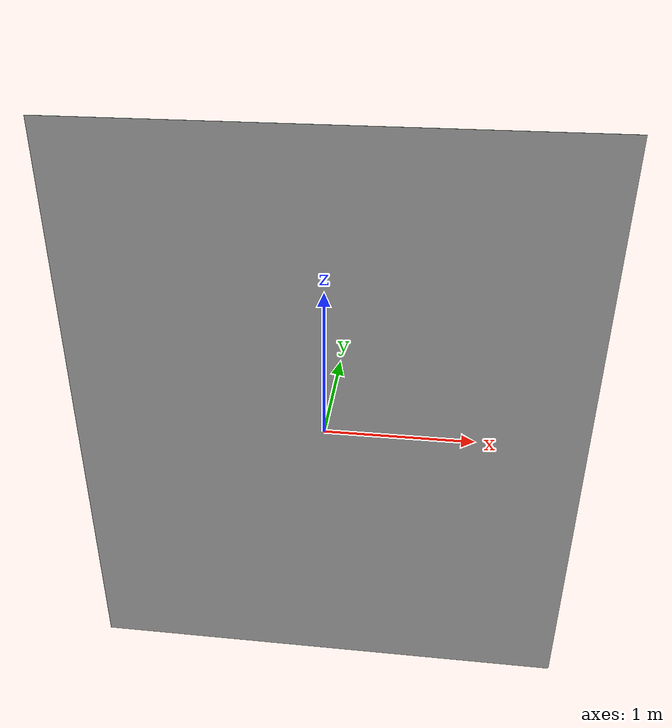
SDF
<?xml version="1.0" ?>
<sdf version="1.6">
  <model name="aws_robomaker_residential_Carpet_01">
    <link name="link">
      <inertial>
	<inertia>
          <ixx>1</ixx>
          <ixy>0</ixy>
          <ixz>0</ixz>
          <iyy>1</iyy>
          <iyz>0</iyz>
          <izz>1</izz>
        </inertia>
        <mass>8.1</mass>
      </inertial>

      <collision name="collision">

        <geometry>
          <mesh>
<uri>model://aws_robomaker_residential_Carpet_01/meshes/object.obj</uri>
            <scale>1 1 0.95</scale>
          </mesh>
        </geometry>

        <surface>
          <contact>
            <ode>
            </ode>
          </contact>
        </surface>

        <pose>0 0 -0.01 0 0 0 </pose>
      </collision>

      <visual name="visual">
	    <geometry>
          <mesh>
<uri>model://aws_robomaker_residential_Carpet_01/meshes/object.obj</uri>
          </mesh>
        </geometry>
      <meta> <layer> 1 </layer></meta>
</visual>
    </link>

    <static>1</static>

  </model>
</sdf>
